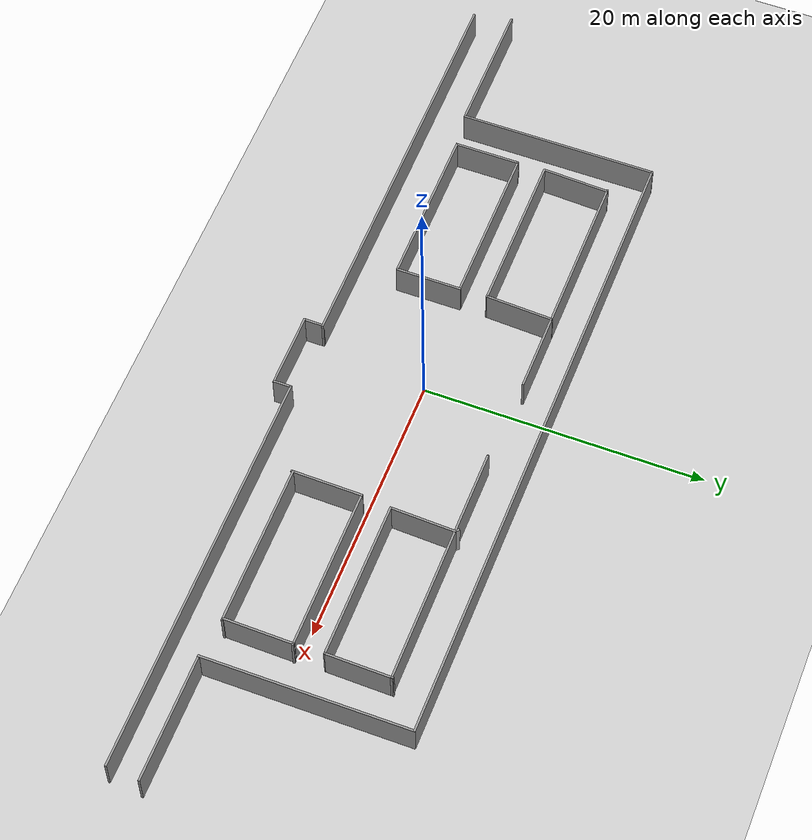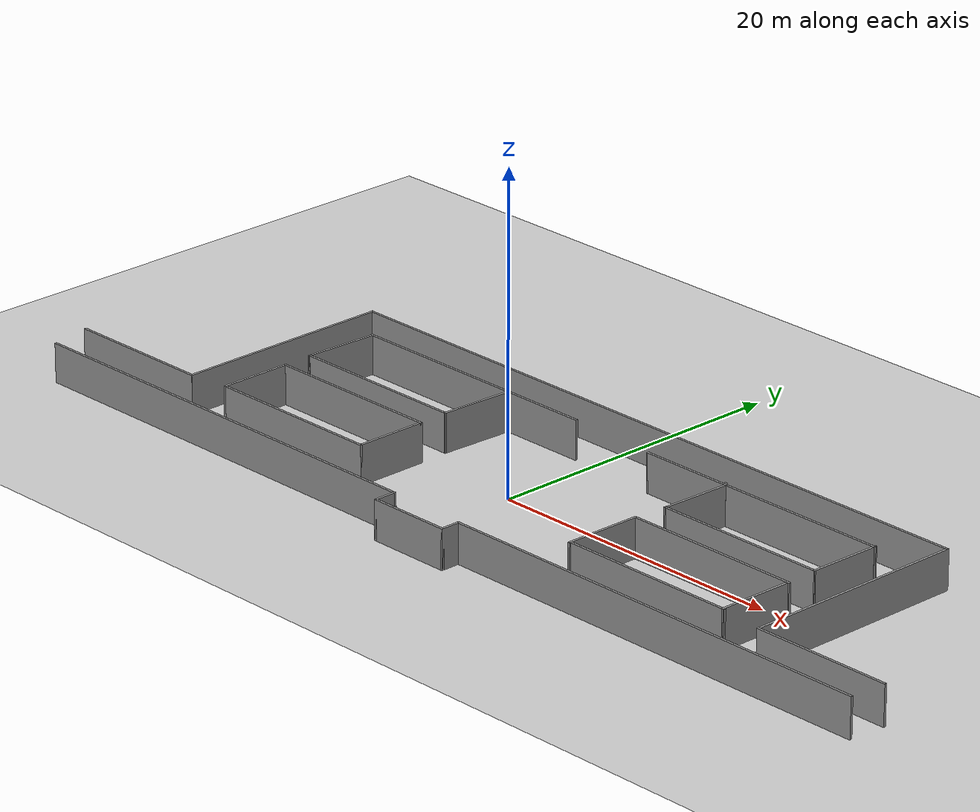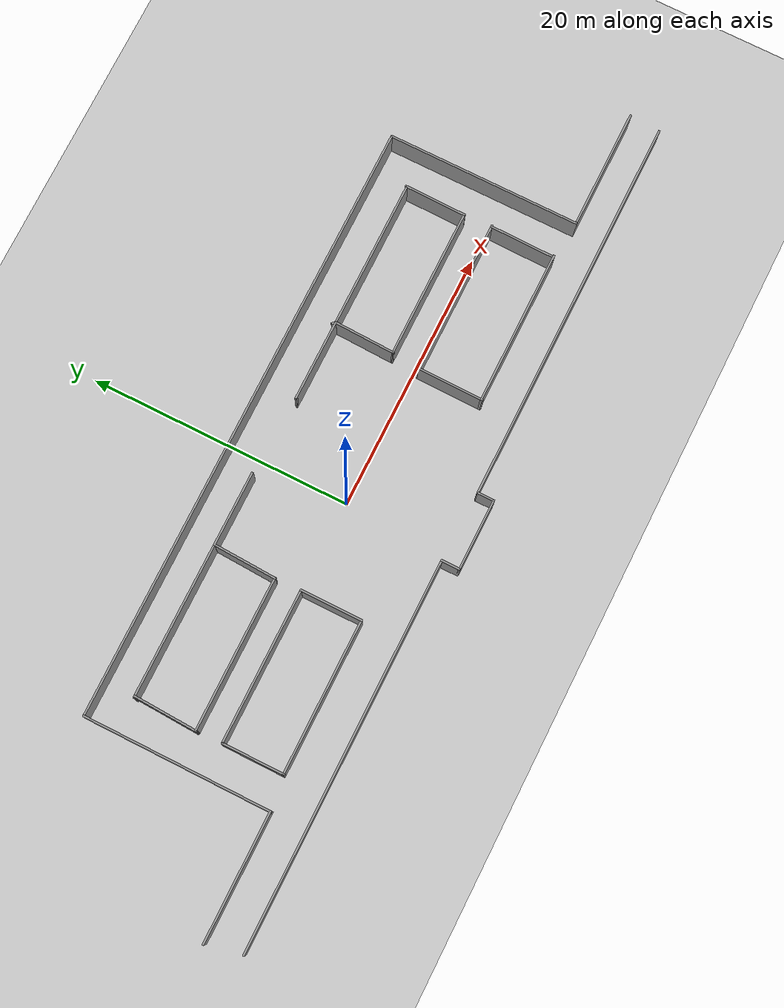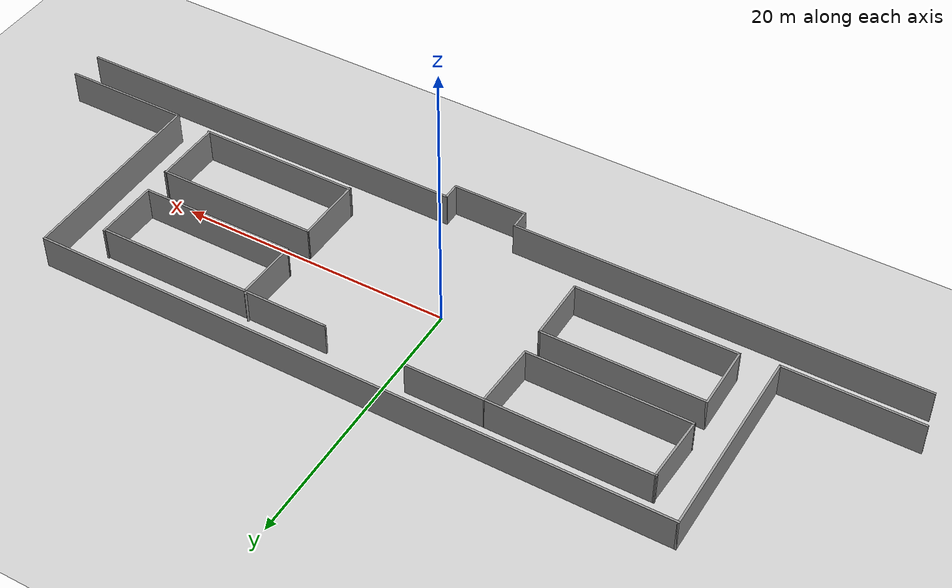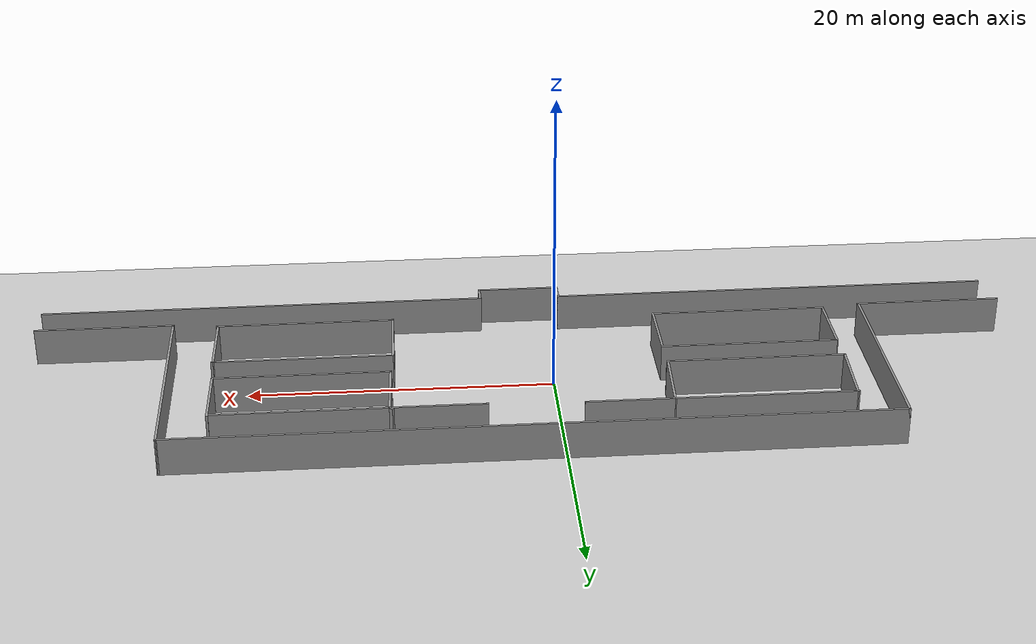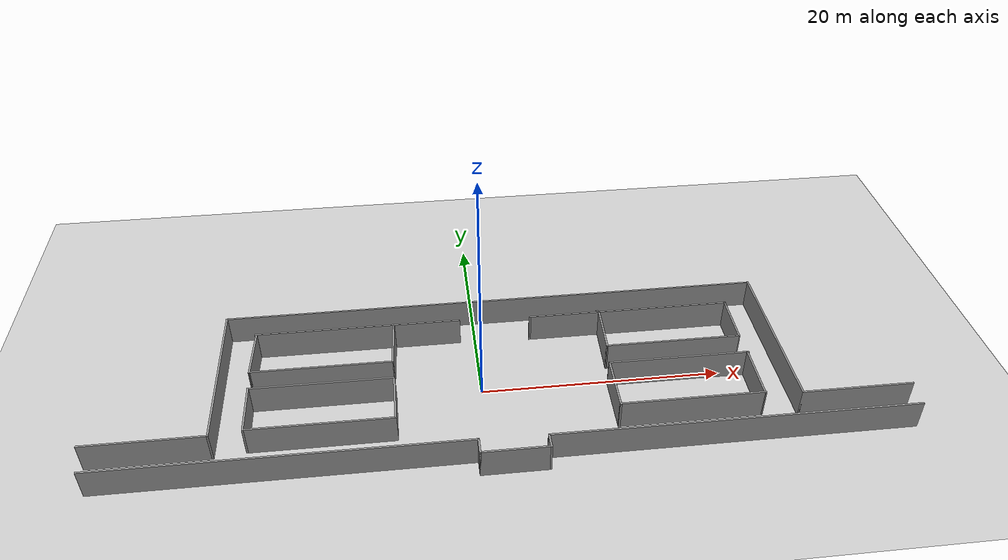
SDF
<sdf version="1.6">
 <world name="default">
  <light name="sun" type="directional">
   <pose>0 0 10 0 -0 0</pose>
   <diffuse>0.8 0.8 0.8 1</diffuse>
   <specular>0.2 0.2 0.2 1</specular>
   <attenuation>
    <range>1000</range>
    <constant>0.9</constant>
    <linear>0.01</linear>
    <quadratic>0.001</quadratic>
   </attenuation>
   <direction>-0.5 0.1 -0.9</direction>
  </light>
  <model name="ground_plane">
   <static>1</static>
   <link name="link">
    <collision name="collision">
     <geometry><plane><normal>0 0 1</normal><size>100 100</size></plane></geometry>
     <surface>
      <contact><collide_bitmask>65535</collide_bitmask></contact>
      <friction><ode><mu>100</mu><mu2>50</mu2></ode></friction>
     </surface>
    </collision>
    <visual name="visual">
     <cast_shadows>0</cast_shadows>
     <geometry><plane><normal>0 0 1</normal><size>100 100</size></plane></geometry>
     <material>
      <script><uri>file://media/materials/scripts/gazebo.material</uri><name>Gazebo/Grey</name></script>
     </material>
    </visual>
   </link>
  </model>
  <gravity>0 0 -9.8</gravity>
  <magnetic_field>6e-06 2.3e-05 -4.2e-05</magnetic_field>
  <atmosphere type="adiabatic"/>
  <physics name="default_physics" default="0" type="ode">
   <max_step_size>0.001</max_step_size>
   <real_time_factor>1</real_time_factor>
   <real_time_update_rate>1000</real_time_update_rate>
  </physics>
  <scene><ambient>0.4 0.4 0.4 1</ambient><background>0.7 0.7 0.7 1</background><shadows>1</shadows></scene>
  <audio><device>default</device></audio>
  <spherical_coordinates>
   <surface_model>EARTH_WGS84</surface_model>
   <latitude_deg>0</latitude_deg>
   <longitude_deg>0</longitude_deg>
   <elevation>0</elevation>
   <heading_deg>0</heading_deg>
  </spherical_coordinates>
  <model name="C5simple">
   <pose>1.62502 -0.044377 0 0 -0 0</pose>
   <link name="Wall_10">
    <collision name="Wall_10_Collision">
     <geometry><box><size>1.5 0.15 2.5</size></box></geometry>
     <pose>0 0 1.25 0 -0 0</pose>
    </collision>
    <visual name="Wall_10_Visual">
     <pose>0 0 1.25 0 -0 0</pose>
     <geometry><box><size>1.5 0.15 2.5</size></box></geometry>
     <material>
      <script><uri>file://media/materials/scripts/gazebo.material</uri><name>Gazebo/Grey</name></script>
      <ambient>1 1 1 1</ambient>
     </material>
     <meta><layer>0</layer></meta>
    </visual>
    <pose>-2.60894 -8.39438 0 0 -0 -1.5708</pose>
   </link>
   <link name="Wall_11">
    <collision name="Wall_11_Collision">
     <geometry><box><size>5.5 0.15 2.5</size></box></geometry>
     <pose>0 0 1.25 0 -0 0</pose>
    </collision>
    <visual name="Wall_11_Visual">
     <pose>0 0 1.25 0 -0 0</pose>
     <geometry><box><size>5.5 0.15 2.5</size></box></geometry>
     <material>
      <script><uri>file://media/materials/scripts/gazebo.material</uri><name>Gazebo/Grey</name></script>
      <ambient>1 1 1 1</ambient>
     </material>
     <meta><layer>0</layer></meta>
    </visual>
    <pose>0.066057 -9.06938 0 0 -0 0</pose>
   </link>
   <link name="Wall_13">
    <collision name="Wall_13_Collision">
     <geometry><box><size>1.28773 0.15 2.5</size></box></geometry>
     <pose>0 0 1.25 0 -0 0</pose>
    </collision>
    <visual name="Wall_13_Visual">
     <pose>0 0 1.25 0 -0 0</pose>
     <geometry><box><size>1.28773 0.15 2.5</size></box></geometry>
     <material>
      <script><uri>file://media/materials/scripts/gazebo.material</uri><name>Gazebo/Grey</name></script>
      <ambient>1 1 1 1</ambient>
     </material>
     <meta><layer>0</layer></meta>
    </visual>
    <pose>2.74106 -8.50052 0 0 -0 1.5708</pose>
   </link>
   <link name="Wall_14">
    <collision name="Wall_14_Collision">
     <geometry><box><size>29.75 0.15 2.5</size></box></geometry>
     <pose>0 0 1.25 0 -0 0</pose>
    </collision>
    <visual name="Wall_14_Visual">
     <pose>0 0 1.25 0 -0 0</pose>
     <geometry><box><size>29.75 0.15 2.5</size></box></geometry>
     <material>
      <script><uri>file://media/materials/scripts/gazebo.material</uri><name>Gazebo/Grey</name></script>
      <ambient>1 1 1 1</ambient>
     </material>
     <meta><layer>0</layer></meta>
    </visual>
    <pose>17.5411 -7.8609 0 0 -0 0</pose>
   </link>
   <link name="Wall_16">
    <collision name="Wall_16_Collision">
     <geometry><box><size>9.75 0.15 2.5</size></box></geometry>
     <pose>0 0 1.25 0 -0 0</pose>
    </collision>
    <visual name="Wall_16_Visual">
     <pose>0 0 1.25 0 -0 0</pose>
     <geometry><box><size>9.75 0.15 2.5</size></box></geometry>
     <material>
      <script><uri>file://media/materials/scripts/gazebo.material</uri><name>Gazebo/Grey</name></script>
      <ambient>1 1 1 1</ambient>
     </material>
     <meta><layer>0</layer></meta>
    </visual>
    <pose>-27.725 -5.03062 0 0 -0 0</pose>
   </link>
   <link name="Wall_17">
    <collision name="Wall_17_Collision">
     <geometry><box><size>14.25 0.15 2.5</size></box></geometry>
     <pose>0 0 1.25 0 -0 0</pose>
    </collision>
    <visual name="Wall_17_Visual">
     <pose>0 0 1.25 0 -0 0</pose>
     <geometry><box><size>14.25 0.15 2.5</size></box></geometry>
     <material>
      <script><uri>file://media/materials/scripts/gazebo.material</uri><name>Gazebo/Grey</name></script>
      <ambient>1 1 1 1</ambient>
     </material>
     <meta><layer>0</layer></meta>
    </visual>
    <pose>-22.925 2.01938 0 0 -0 1.5708</pose>
   </link>
   <link name="Wall_18">
    <collision name="Wall_18_Collision">
     <geometry><box><size>46.5 0.15 2.5</size></box></geometry>
     <pose>0 0 1.25 0 -0 0</pose>
    </collision>
    <visual name="Wall_18_Visual">
     <pose>0 0 1.25 0 -0 0</pose>
     <geometry><box><size>46.5 0.15 2.5</size></box></geometry>
     <material>
      <script><uri>file://media/materials/scripts/gazebo.material</uri><name>Gazebo/Grey</name></script>
      <ambient>1 1 1 1</ambient>
     </material>
     <meta><layer>0</layer></meta>
    </visual>
    <pose>0.25 9.06938 0 0 -0 0</pose>
   </link>
   <link name="Wall_19">
    <collision name="Wall_19_Collision">
     <geometry><box><size>14.75 0.15 2.5</size></box></geometry>
     <pose>0 0 1.25 0 -0 0</pose>
    </collision>
    <visual name="Wall_19_Visual">
     <pose>0 0 1.25 0 -0 0</pose>
     <geometry><box><size>14.75 0.15 2.5</size></box></geometry>
     <material>
      <script><uri>file://media/materials/scripts/gazebo.material</uri><name>Gazebo/Grey</name></script>
      <ambient>1 1 1 1</ambient>
     </material>
     <meta><layer>0</layer></meta>
    </visual>
    <pose>23.425 1.76938 0 0 -0 -1.5708</pose>
   </link>
   <link name="Wall_20">
    <collision name="Wall_20_Collision">
     <geometry><box><size>9.25 0.15 2.5</size></box></geometry>
     <pose>0 0 1.25 0 -0 0</pose>
    </collision>
    <visual name="Wall_20_Visual">
     <pose>0 0 1.25 0 -0 0</pose>
     <geometry><box><size>9.25 0.15 2.5</size></box></geometry>
     <material>
      <script><uri>file://media/materials/scripts/gazebo.material</uri><name>Gazebo/Grey</name></script>
      <ambient>1 1 1 1</ambient>
     </material>
     <meta><layer>0</layer></meta>
    </visual>
    <pose>27.975 -5.53062 0 0 -0 0</pose>
   </link>
   <link name="Wall_22">
    <collision name="Wall_22_Collision">
     <geometry><box><size>11.75 0.15 2.5</size></box></geometry>
     <pose>0 0 1.25 0 -0 0</pose>
    </collision>
    <visual name="Wall_22_Visual">
     <pose>0 0 1.25 0 -0 0</pose>
     <geometry><box><size>11.75 0.15 2.5</size></box></geometry>
     <material>
      <script><uri>file://media/materials/scripts/gazebo.material</uri><name>Gazebo/Grey</name></script>
      <ambient>1 1 1 1</ambient>
     </material>
     <meta><layer>0</layer></meta>
    </visual>
    <pose>-14.484 6.6443 0 0 -0 0</pose>
   </link>
   <link name="Wall_23">
    <collision name="Wall_23_Collision">
     <geometry><box><size>4.90096 0.15 2.5</size></box></geometry>
     <pose>0 0 1.25 0 -0 0</pose>
    </collision>
    <visual name="Wall_23_Visual">
     <pose>0 0 1.25 0 -0 0</pose>
     <geometry><box><size>4.90096 0.15 2.5</size></box></geometry>
     <material>
      <script><uri>file://media/materials/scripts/gazebo.material</uri><name>Gazebo/Grey</name></script>
      <ambient>1 1 1 1</ambient>
     </material>
     <meta><layer>0</layer></meta>
    </visual>
    <pose>-8.71941 4.27119 0 0 -0 -1.61549</pose>
   </link>
   <link name="Wall_24">
    <collision name="Wall_24_Collision">
     <geometry><box><size>11.75 0.15 2.5</size></box></geometry>
     <pose>0 0 1.25 0 -0 0</pose>
    </collision>
    <visual name="Wall_24_Visual">
     <pose>0 0 1.25 0 -0 0</pose>
     <geometry><box><size>11.75 0.15 2.5</size></box></geometry>
     <material>
      <script><uri>file://media/materials/scripts/gazebo.material</uri><name>Gazebo/Grey</name></script>
      <ambient>1 1 1 1</ambient>
     </material>
     <meta><layer>0</layer></meta>
    </visual>
    <pose>-14.6255 1.89808 0 0 -0 3.14159</pose>
   </link>
   <link name="Wall_25">
    <collision name="Wall_25_Collision">
     <geometry><box><size>4.90096 0.15 2.5</size></box></geometry>
     <pose>0 0 1.25 0 -0 0</pose>
    </collision>
    <visual name="Wall_25_Visual">
     <pose>0 0 1.25 0 -0 0</pose>
     <geometry><box><size>4.90096 0.15 2.5</size></box></geometry>
     <material>
      <script><uri>file://media/materials/scripts/gazebo.material</uri><name>Gazebo/Grey</name></script>
      <ambient>1 1 1 1</ambient>
     </material>
     <meta><layer>0</layer></meta>
    </visual>
    <pose>-20.3194 4.27119 0 0 -0 1.5261</pose>
   </link>
   <link name="Wall_27">
    <collision name="Wall_27_Collision">
     <geometry><box><size>11.75 0.15 2.5</size></box></geometry>
     <pose>0 0 1.25 0 -0 0</pose>
    </collision>
    <visual name="Wall_27_Visual">
     <pose>0 0 1.25 0 -0 0</pose>
     <geometry><box><size>11.75 0.15 2.5</size></box></geometry>
     <material>
      <script><uri>file://media/materials/scripts/gazebo.material</uri><name>Gazebo/Grey</name></script>
      <ambient>1 1 1 1</ambient>
     </material>
     <meta><layer>0</layer></meta>
    </visual>
    <pose>-14.5548 -0.077622 0 0 -0 0</pose>
   </link>
   <link name="Wall_28">
    <collision name="Wall_28_Collision">
     <geometry><box><size>4.75 0.15 2.5</size></box></geometry>
     <pose>0 0 1.25 0 -0 0</pose>
    </collision>
    <visual name="Wall_28_Visual">
     <pose>0 0 1.25 0 -0 0</pose>
     <geometry><box><size>4.75 0.15 2.5</size></box></geometry>
     <material>
      <script><uri>file://media/materials/scripts/gazebo.material</uri><name>Gazebo/Grey</name></script>
      <ambient>1 1 1 1</ambient>
     </material>
     <meta><layer>0</layer></meta>
    </visual>
    <pose>-8.75479 -2.37762 0 0 -0 -1.5708</pose>
   </link>
   <link name="Wall_29">
    <collision name="Wall_29_Collision">
     <geometry><box><size>11.75 0.15 2.5</size></box></geometry>
     <pose>0 0 1.25 0 -0 0</pose>
    </collision>
    <visual name="Wall_29_Visual">
     <pose>0 0 1.25 0 -0 0</pose>
     <geometry><box><size>11.75 0.15 2.5</size></box></geometry>
     <material>
      <script><uri>file://media/materials/scripts/gazebo.material</uri><name>Gazebo/Grey</name></script>
      <ambient>1 1 1 1</ambient>
     </material>
     <meta><layer>0</layer></meta>
    </visual>
    <pose>-14.5548 -4.67762 0 0 -0 3.14159</pose>
   </link>
   <link name="Wall_30">
    <collision name="Wall_30_Collision">
     <geometry><box><size>4.75 0.15 2.5</size></box></geometry>
     <pose>0 0 1.25 0 -0 0</pose>
    </collision>
    <visual name="Wall_30_Visual">
     <pose>0 0 1.25 0 -0 0</pose>
     <geometry><box><size>4.75 0.15 2.5</size></box></geometry>
     <material>
      <script><uri>file://media/materials/scripts/gazebo.material</uri><name>Gazebo/Grey</name></script>
      <ambient>1 1 1 1</ambient>
     </material>
     <meta><layer>0</layer></meta>
    </visual>
    <pose>-20.3548 -2.37762 0 0 -0 1.5708</pose>
   </link>
   <link name="Wall_32">
    <collision name="Wall_32_Collision">
     <geometry><box><size>5.10429 0.15 2.5</size></box></geometry>
     <pose>0 0 1.25 0 -0 0</pose>
    </collision>
    <visual name="Wall_32_Visual">
     <pose>0 0 1.25 0 -0 0</pose>
     <geometry><box><size>5.10429 0.15 2.5</size></box></geometry>
     <material>
      <script><uri>file://media/materials/scripts/gazebo.material</uri><name>Gazebo/Grey</name></script>
      <ambient>1 1 1 1</ambient>
     </material>
     <meta><layer>0</layer></meta>
    </visual>
    <pose>8.8325 -2.76679 0 0 -0 -1.58508</pose>
   </link>
   <link name="Wall_33">
    <collision name="Wall_33_Collision">
     <geometry><box><size>11.8538 0.15 2.5</size></box></geometry>
     <pose>0 0 1.25 0 -0 0</pose>
    </collision>
    <visual name="Wall_33_Visual">
     <pose>0 0 1.25 0 -0 0</pose>
     <geometry><box><size>11.8538 0.15 2.5</size></box></geometry>
     <material>
      <script><uri>file://media/materials/scripts/gazebo.material</uri><name>Gazebo/Grey</name></script>
      <ambient>1 1 1 1</ambient>
     </material>
     <meta><layer>0</layer></meta>
    </visual>
    <pose>14.649 -5.17292 0 0 -0 0</pose>
   </link>
   <link name="Wall_35">
    <collision name="Wall_35_Collision">
     <geometry><box><size>11.8538 0.15 2.5</size></box></geometry>
     <pose>0 0 1.25 0 -0 0</pose>
    </collision>
    <visual name="Wall_35_Visual">
     <pose>0 0 1.25 0 -0 0</pose>
     <geometry><box><size>11.8538 0.15 2.5</size></box></geometry>
     <material>
      <script><uri>file://media/materials/scripts/gazebo.material</uri><name>Gazebo/Grey</name></script>
      <ambient>1 1 1 1</ambient>
     </material>
     <meta><layer>0</layer></meta>
    </visual>
    <pose>14.7198 -0.289893 0 0 -0 0</pose>
   </link>
   <link name="Wall_36">
    <collision name="Wall_36_Collision">
     <geometry><box><size>5.03354 0.15 2.5</size></box></geometry>
     <pose>0 0 1.25 0 -0 0</pose>
    </collision>
    <visual name="Wall_36_Visual">
     <pose>0 0 1.25 0 -0 0</pose>
     <geometry><box><size>5.03354 0.15 2.5</size></box></geometry>
     <material>
      <script><uri>file://media/materials/scripts/gazebo.material</uri><name>Gazebo/Grey</name></script>
      <ambient>1 1 1 1</ambient>
     </material>
     <meta><layer>0</layer></meta>
    </visual>
    <pose>20.4655 -2.73141 0 0 -0 -1.58529</pose>
   </link>
   <link name="Wall_38">
    <collision name="Wall_38_Collision">
     <geometry><box><size>4.70301 0.15 2.5</size></box></geometry>
     <pose>0 0 1.25 0 -0 0</pose>
    </collision>
    <visual name="Wall_38_Visual">
     <pose>0 0 1.25 0 -0 0</pose>
     <geometry><box><size>4.70301 0.15 2.5</size></box></geometry>
     <material>
      <script><uri>file://media/materials/scripts/gazebo.material</uri><name>Gazebo/Grey</name></script>
      <ambient>1 1 1 1</ambient>
     </material>
     <meta><layer>0</layer></meta>
    </visual>
    <pose>9.15621 4.10726 0 0 -0 -1.60421</pose>
   </link>
   <link name="Wall_39">
    <collision name="Wall_39_Collision">
     <geometry><box><size>11.5 0.15 2.5</size></box></geometry>
     <pose>0 0 1.25 0 -0 0</pose>
    </collision>
    <visual name="Wall_39_Visual">
     <pose>0 0 1.25 0 -0 0</pose>
     <geometry><box><size>11.5 0.15 2.5</size></box></geometry>
     <material>
      <script><uri>file://media/materials/scripts/gazebo.material</uri><name>Gazebo/Grey</name></script>
      <ambient>1 1 1 1</ambient>
     </material>
     <meta><layer>0</layer></meta>
    </visual>
    <pose>14.7552 1.83203 0 0 -0 0</pose>
   </link>
   <link name="Wall_40">
    <collision name="Wall_40_Collision">
     <geometry><box><size>4.78827 0.15 2.5</size></box></geometry>
     <pose>0 0 1.25 0 -0 0</pose>
    </collision>
    <visual name="Wall_40_Visual">
     <pose>0 0 1.25 0 -0 0</pose>
     <geometry><box><size>4.78827 0.15 2.5</size></box></geometry>
     <material>
      <script><uri>file://media/materials/scripts/gazebo.material</uri><name>Gazebo/Grey</name></script>
      <ambient>1 1 1 1</ambient>
     </material>
     <meta><layer>0</layer></meta>
    </visual>
    <pose>20.4655 4.15089 0 0 -0 1.55554</pose>
   </link>
   <link name="Wall_41">
    <collision name="Wall_41_Collision">
     <geometry><box><size>11.4191 0.15 2.5</size></box></geometry>
     <pose>0 0 1.25 0 -0 0</pose>
    </collision>
    <visual name="Wall_41_Visual">
     <pose>0 0 1.25 0 -0 0</pose>
     <geometry><box><size>11.4191 0.15 2.5</size></box></geometry>
     <material>
      <script><uri>file://media/materials/scripts/gazebo.material</uri><name>Gazebo/Grey</name></script>
      <ambient>1 1 1 1</ambient>
     </material>
     <meta><layer>0</layer></meta>
    </visual>
    <pose>14.8666 6.39075 0 0 -0 -3.14013</pose>
   </link>
   <link name="Wall_43">
    <collision name="Wall_43_Collision">
     <geometry><box><size>5.75 0.15 2.5</size></box></geometry>
     <pose>0 0 1.25 0 -0 0</pose>
    </collision>
    <visual name="Wall_43_Visual">
     <pose>0 0 1.25 0 -0 0</pose>
     <geometry><box><size>5.75 0.15 2.5</size></box></geometry>
     <material>
      <script><uri>file://media/materials/scripts/gazebo.material</uri><name>Gazebo/Grey</name></script>
      <ambient>1 1 1 1</ambient>
     </material>
     <meta><layer>0</layer></meta>
    </visual>
    <pose>-5.81327 6.6443 0 0 -0 0</pose>
   </link>
   <link name="Wall_46">
    <collision name="Wall_46_Collision">
     <geometry><box><size>0.395583 0.15 2.5</size></box></geometry>
     <pose>0 0 1.25 0 -0 0</pose>
    </collision>
    <visual name="Wall_46_Visual">
     <pose>0 0 1.25 0 -0 0</pose>
     <geometry><box><size>0.395583 0.15 2.5</size></box></geometry>
     <material>
      <script><uri>file://media/materials/scripts/gazebo.material</uri><name>Gazebo/Grey</name></script>
      <ambient>1 1 1 1</ambient>
     </material>
     <meta><layer>0</layer></meta>
    </visual>
    <pose>9.1463 6.47016 0 0 -0 2.34647</pose>
   </link>
   <link name="Wall_48">
    <collision name="Wall_48_Collision">
     <geometry><box><size>6.25 0.15 2.5</size></box></geometry>
     <pose>0 0 1.25 0 -0 0</pose>
    </collision>
    <visual name="Wall_48_Visual">
     <pose>0 0 1.25 0 -0 0</pose>
     <geometry><box><size>6.25 0.15 2.5</size></box></geometry>
     <material>
      <script><uri>file://media/materials/scripts/gazebo.material</uri><name>Gazebo/Grey</name></script>
      <ambient>1 1 1 1</ambient>
     </material>
     <meta><layer>0</layer></meta>
    </visual>
    <pose>6.18228 6.3825 0 0 -0 3.14159</pose>
   </link>
   <link name="Wall_49">
    <collision name="Wall_49_Collision">
     <geometry><box><size>0.16 0.15 2.5</size></box></geometry>
     <pose>0 0 1.25 0 -0 0</pose>
    </collision>
    <visual name="Wall_49_Visual">
     <pose>0 0 1.25 0 -0 0</pose>
     <geometry><box><size>0.16 0.15 2.5</size></box></geometry>
     <material>
      <script><uri>file://media/materials/scripts/gazebo.material</uri><name>Gazebo/Grey</name></script>
      <ambient>1 1 1 1</ambient>
     </material>
     <meta><layer>0</layer></meta>
    </visual>
    <pose>3.13728 6.3825 0 0 -0 0</pose>
   </link>
   <link name="Wall_8">
    <collision name="Wall_8_Collision">
     <geometry><box><size>29.5 0.15 2.5</size></box></geometry>
     <pose>0 0 1.25 0 -0 0</pose>
    </collision>
    <visual name="Wall_8_Visual">
     <pose>0 0 1.25 0 -0 0</pose>
     <geometry><box><size>29.5 0.15 2.5</size></box></geometry>
     <material>
      <script><uri>file://media/materials/scripts/gazebo.material</uri><name>Gazebo/Grey</name></script>
      <ambient>1 1 1 1</ambient>
     </material>
     <meta><layer>0</layer></meta>
    </visual>
    <pose>-17.2839 -7.71938 0 0 -0 0</pose>
   </link>
   <static>1</static>
  </model>
 </world>
</sdf>
